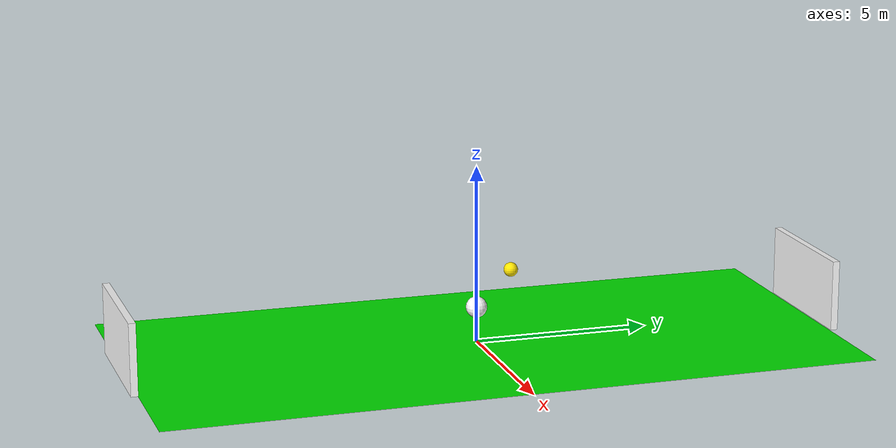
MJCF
<mujoco>
	<worldbody>
        <light diffuse=".5 .5 .5" pos="0 0 20" dir="0 0 -10"/>
		<geom type="plane" size="4.9 9.9 0.1" rgba="0 .9 0 1"/>
        <geom type="box" size="2 1 0.1" euler="90 0 0" pos="0 -10 1" rgba="1 1 1 1"/>
        <geom type="box" size="2 1 0.1" euler="90 0 0" pos="0 10 1" rgba="1 1 1 1"/>
        <geom type="plane" size="5 10 0.1" pos="0 0 -.01" rgba="1 1 1 1"/>
        <geom type="plane" size="4.9 0.1 0.1" rgba="1 1 1 1"/>
		<body pos="0 0 1">
			<joint  type="free"/>
			<geom type="sphere" size=".3" rgba="1 1 1 1"/>
		</body>
        <body pos="0 1 2" >
            <body>
                <geom type="sphere" size=".1" rgba="1 .9 0 1"/>
            </body>
            <joint name="agent" type="free"/>
			<geom type="sphere" size=".2" rgba="1 .9 0 1"/>
		</body>
	</worldbody>
    <actuator>

    <position joint="agent" name="agent" gear="1" ctrllimited="true" ctrlrange="0 1"/>

    </actuator>
</mujoco>
